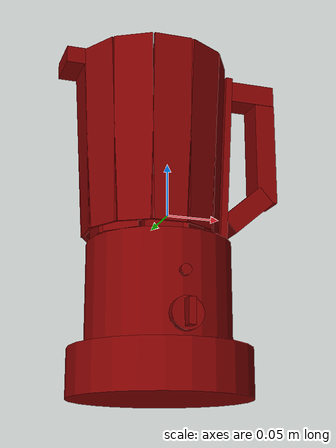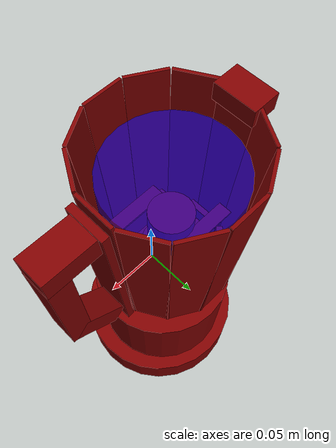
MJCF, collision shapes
<?xml version='1.0' encoding='UTF-8'?>
<mujoco model="model">
  <option timestep="0.002" gravity="0.0 0.0 -9.81"/>
  <compiler angle="radian"/>
  <asset>
    <mesh file="visuals/blade.obj" name="blade_vis"/>
    <mesh file="visuals/Body001.obj" name="Body001_vis"/>
    <mesh file="visuals/knob_speed.obj" name="knob_speed_vis"/>
    <mesh file="visuals/pitcher.obj" name="pitcher_vis"/>
    <mesh file="visuals/pitcher_main.obj" name="pitcher_main_vis"/>
    <mesh file="visuals/power_button.obj" name="power_button_vis"/>
    <texture file="visuals/T_BC001.png" name="Body001_material" type="2d"/>
    <material name="Body001_material" rgba="1 1 1 1.0" texture="Body001_material" shininess="0.4472135901451111" specular="2"/>
    <texture file="visuals/T_BC001.png" name="knob_speed_material" type="2d"/>
    <material name="knob_speed_material" rgba="1 1 1 1.0" texture="knob_speed_material" shininess="0.4472135901451111" specular="1"/>
    <texture file="visuals/T_BC001.png" name="pitcher_material" type="2d"/>
    <material name="pitcher_material" rgba="1 1 1 1.0" texture="pitcher_material" shininess="0.4472135901451111" specular="1"/>
    <texture file="visuals/T_BC001.png" name="blade_material" type="2d"/>
    <material name="blade_material" rgba="1 1 1 1.0" texture="blade_material" shininess="0.4472135901451111" specular="1"/>
    <texture file="visuals/T_BC001.png" name="pitcher_main_material" type="2d"/>
    <material name="pitcher_main_material" rgba="1 1 1 0.800000011920929" texture="pitcher_main_material" shininess="0.4472135901451111" specular="0.3103448502657381"/>
    <texture file="visuals/T_BC001.png" name="power_button_material" type="2d"/>
    <material name="power_button_material" rgba="1 1 1 1.0" texture="power_button_material" shininess="0.4472135901451111" specular="1"/>
  </asset>
  <default>
    <default class="visual">
      <geom conaffinity="0" contype="0" group="1" type="mesh"/>
    </default>
    <default class="collision">
      <geom group="0" rgba="0.5 0 0 0.5" density="1.0" solref="0.004 1" solimp="0.998 0.998 0.001"/>
    </default>
    <default class="spawn">
      <geom group="0" rgba="1 1 1 0.5" contype="0" conaffinity="0"/>
      <site group="0" rgba="1 1 1 0.5"/>
    </default>
    <default class="region">
      <geom group="1" conaffinity="0" contype="0" rgba="0 1 0 0" mass="0"/>
    </default>
  </default>
  <worldbody>
    <body>
      <body name="object">
        <geom mesh="Body001_vis" type="mesh" solimp="0.998 0.998 0.001" solref="0.001 1" friction="0.95 0.3 0.1" class="visual" material="Body001_material"/>
        <geom type="cylinder" pos="-0.00589545 0.00393850 -0.14606652" size="0.08354654908180237 0.02203417755663395" quat="1.0 0.0 0.0 0.0" class="collision"/>
        <geom type="cylinder" pos="-0.00589545 0.00832500 -0.07502760" size="0.06711135804653168 0.04750218614935875" quat="1.0 0.0 0.0 0.0" class="collision"/>
        <geom type="box" pos="-0.06489586 0.00609948 -0.00727709" size="0.0030985779594630003 0.017711566761136055 0.017908580601215363" quat="1.0 0.0 0.0 0.0" class="collision"/>
        <geom type="box" pos="0.02932438 0.00609948 -0.00727709" size="0.0030985779594630003 0.017711566761136055 0.017908567562699318" quat="1.0 0.0 0.0 0.0" class="collision"/>
        <geom type="box" pos="-0.01778574 -0.04101064 -0.00727709" size="0.017711568623781204 0.0030985793564468622 0.017908554524183273" quat="1.0 0.0 0.0 0.0" class="collision"/>
        <geom type="box" pos="-0.01778575 0.05320960 -0.00727709" size="0.017711568623781204 0.0030985793564468622 0.01790854148566723" quat="1.0 0.0 0.0 0.0" class="collision"/>
        <geom type="box" pos="0.01552614 0.03941137 -0.00727709" size="0.0030985777266323566 0.017711566761136055 0.01790849305689335" quat="0.38268354535102844 0.0 -0.0 -0.9238795042037964" class="collision"/>
        <geom type="box" pos="-0.05109762 -0.02721241 -0.00727709" size="0.0030985777266323566 0.017711566761136055 0.01790849305689335" quat="0.38268354535102844 0.0 -0.0 -0.9238795042037964" class="collision"/>
        <geom type="box" pos="0.01552614 -0.02721241 -0.00727709" size="0.0030985779594630003 0.017711566761136055 0.01790849305689335" quat="0.9238795042037964 0.0 -0.0 -0.3826834559440613" class="collision"/>
        <geom type="box" pos="-0.05109763 0.03941137 -0.00727709" size="0.0030985779594630003 0.017711566761136055 0.01790849305689335" quat="0.9238795042037964 0.0 -0.0 -0.3826834559440613" class="collision"/>
        <body name="power_button">
          <joint axis="0.0 1.0 0.0" pos="-0.00590266 -0.06572178 -0.06649382" limited="true" name="power_button_joint" range="0.0 0.0015" type="slide" damping="1" frictionloss="1" armature=".01" stiffness="0.3"  springref="-0.3"/>
          <geom mesh="power_button_vis" type="mesh" solimp="0.998 0.998 0.001" solref="0.001 1" friction="0.95 0.3 0.1" class="visual" material="power_button_material"/>
          <geom class="collision" type="cylinder" pos="-0.00589458 -0.06567700 -0.06653088" size="0.00479704886674881 0.0025645531713962555" quat="0.7071068286895752 0.7071067690849304 0.0 0.0" name="power_button_main"/>
        </body>
        <body name="pitcher">
          <geom mesh="pitcher_vis" type="mesh" solimp="0.998 0.998 0.001" solref="0.001 1" friction="0.95 0.3 0.1" class="visual" material="pitcher_material"/>
          <geom class="collision" type="box" pos="0.08418640 0.00630333 0.13202402" size="0.024435071274638176 0.013484399765729904 0.010110474191606045" quat="1.0 0.0 0.0 0.0" name="pitcher_handle_2"/>
          <geom class="collision" type="box" pos="0.09880317 0.00630333 0.07120916" size="0.010110338218510151 0.013484399765729904 0.05041544884443283" quat="1.0 0.0 0.0 0.0" name="pitcher_handle_1"/>
          <geom class="collision" type="box" pos="0.07894173 0.00630333 0.01163420" size="0.02543528564274311 0.013484399765729904 0.010110336355865002" quat="0.9384012818336487 0.0 -0.3455474078655243 0.0" name="pitcher_handle_0"/>
          <geom type="box" pos="0.05565577 0.00609948 0.06190076" size="0.003270904766395688 0.017711566761136055 0.08210444450378418" quat="0.9996132850646973 0.0 0.027808554470539093 0.0" class="collision"/>
          <body name="blade">
            <geom mesh="blade_vis" type="mesh" solimp="0.998 0.998 0.001" solref="0.001 1" friction="0.95 0.3 0.1" class="visual" material="blade_material"/>
            <geom type="cylinder" pos="-0.01759728 0.00651794 -0.00822668" size="0.0280256737023592 0.018888885155320168" quat="1.0 0.0 0.0 0.0" class="collision"/>
            <geom type="cylinder" pos="-0.01759728 0.00651794 0.03841868" size="0.02053365297615528 0.027440669015049934" quat="1.0 0.0 0.0 0.0" class="collision"/>
            <geom type="box" pos="-0.04218399 -0.01018318 0.02206498" size="0.006671010982245207 0.025818057358264923 0.0009999943431466818" quat="1.0 0.0 0.0 0.0" class="collision"/>
            <geom type="box" pos="0.00668284 0.02300004 0.03221628" size="0.006671010982245207 0.025818057358264923 0.000999994808807969" quat="1.0 0.0 0.0 0.0" class="collision"/>
            <geom type="box" pos="-0.00153811 -0.01841878 0.06132433" size="0.025818057358264923 0.006671012844890356 0.0009999953908845782" quat="1.0 0.0 0.0 0.0" class="collision"/>
            <geom type="box" pos="-0.03472133 0.03044805 0.05117302" size="0.025818057358264923 0.006671012844890356 0.0009999959729611874" quat="1.0 0.0 0.0 0.0" class="collision"/>
          </body>
          <body name="pitcher_main">
            <geom class="region" type="cylinder" size="0.058592818677425385 0.02691003493964672" pos="-0.01763877 0.00649621 0.09418293" rgba="0 0 1 0.5" name="reg_int"/>
            <geom mesh="pitcher_main_vis" type="mesh" solimp="0.998 0.998 0.001" solref="0.001 1" friction="0.95 0.3 0.1" class="visual" material="pitcher_main_material"/>
            <geom type="box" pos="0.04899446 0.00609948 0.06479517" size="0.0014110434567555785 0.017711566761136055 0.08591540902853012" quat="0.9996132850646973 0.0 0.027808554470539093 0.0" class="collision"/>
            <geom type="box" pos="-0.07943814 0.00609948 0.06479517" size="0.0014110434567555785 0.017711566761136055 0.08591540902853012" quat="0.9996132850646973 0.0 -0.02780856378376484 0.0" class="collision"/>
            <geom type="box" pos="-0.01522185 0.07031578 0.06479517" size="0.0014110434567555785 0.017711566761136055 0.08591540902853012" quat="0.7068333625793457 -0.019663644954562187 -0.019663646817207336 -0.7068333029747009" class="collision"/>
            <geom type="box" pos="-0.01522183 -0.05811682 0.06479517" size="0.0014110434567555785 0.017711566761136055 0.08591540902853012" quat="0.7068333625793457 0.01966363750398159 0.01966363750398159 -0.7068333029747009" class="collision"/>
            <geom type="box" pos="-0.04732998 -0.04951347 0.06479517" size="0.0014110434567555785 0.017711566761136055 0.08591540902853012" quat="0.49980661273002625 0.024082934483885765 0.013904287479817867 -0.8656904697418213" class="collision"/>
            <geom type="box" pos="0.01688630 0.06171243 0.06479517" size="0.0014110434567555785 0.017711566761136055 0.08591540902853012" quat="0.49980661273002625 -0.02408294379711151 -0.013904293067753315 -0.8656904697418213" class="collision"/>
            <geom type="box" pos="0.04039111 0.03820763 0.06479517" size="0.0014110434567555785 0.017711566761136055 0.08591540902853012" quat="0.25871896743774414 -0.026861032471060753 -0.007197392173111439 -0.9655522704124451" class="collision"/>
            <geom type="box" pos="-0.07083479 -0.02600867 0.06479517" size="0.0014110434567555785 0.017711566761136055 0.08591540902853012" quat="0.25871896743774414 0.026861021295189857 0.007197389379143715 -0.9655522704124451" class="collision"/>
            <geom type="box" pos="-0.07083479 0.03820764 0.06479517" size="0.0014110434567555785 0.017711566761136055 0.08591540157794952" quat="0.25871920585632324 -0.026860984042286873 0.007197386585175991 0.9655522108078003" class="collision"/>
            <geom type="box" pos="0.04039111 -0.02600867 0.06479517" size="0.0014110434567555785 0.017711566761136055 0.08591540902853012" quat="0.25871920585632324 0.026861025020480156 -0.007197396829724312 0.9655522108078003" class="collision"/>
            <geom type="box" pos="0.01688631 -0.04951347 0.06479517" size="0.0014110434567555785 0.017711566761136055 0.08591540902853012" quat="0.4998069107532501 0.024082958698272705 -0.013904307037591934 0.865690290927887" class="collision"/>
            <geom type="box" pos="-0.04732999 0.06171243 0.06479517" size="0.0014110434567555785 0.017711566761136055 0.08591540902853012" quat="0.4998069107532501 -0.02408294752240181 0.013904299587011337 0.865690290927887" class="collision"/>
            <geom type="box" pos="-0.08910745 0.00693062 0.14392556" size="0.012614632025361061 0.019579734653234482 0.007855560630559921" quat="1.0 0.0 0.0 0.0" class="collision"/>
          </body>
        </body>
        <body name="knob_speed">
          <joint axis="0.0 1.0 0.0" pos="-0.00555410 -0.07280536 -0.10391000" limited="true" name="knob_speed_joint" range="0.0 3.141592653589793" type="hinge" damping="0.05" frictionloss="0.1" armature="0.001"/>
          <geom mesh="knob_speed_vis" type="mesh" solimp="0.998 0.998 0.001" solref="0.001 1" friction="0.95 0.3 0.1" class="visual" material="knob_speed_material"/>
          <geom type="cylinder" pos="-0.00568766 -0.06713738 -0.10368082" size="0.01438992377370596 0.0037583396770060062" quat="0.7071068286895752 0.7071067690849304 0.0 0.0" class="collision" density="0.001"/>
          <geom class="collision" type="box" pos="-0.00556798 -0.07641022 -0.10375317" size="0.0031969596166163683 0.0053777205757796764 0.011407946236431599" quat="1.0 0.0 0.0 0.0" name="knob_speed_main" density="0.001"/>
        </body>
        <geom class="region" name="reg_main" type="box" pos="-0.01666377 0.006403230000000003 0.0" size="0.09317523 0.07634377 0.16918732"/>
      </body>
      <site rgba="0 1 0 0" size="0.005" pos="-0.01545465 0.00640317 0.15163089" name="anchor_site"/>
    </body>
  </worldbody>
  <actuator>
    <motor name="knob_speed_joint_actuator" joint="knob_speed_joint" gear="10"/>
    <motor name="power_button_joint_actuator" joint="power_button_joint" gear="0.5"/>
  </actuator>
</mujoco>
